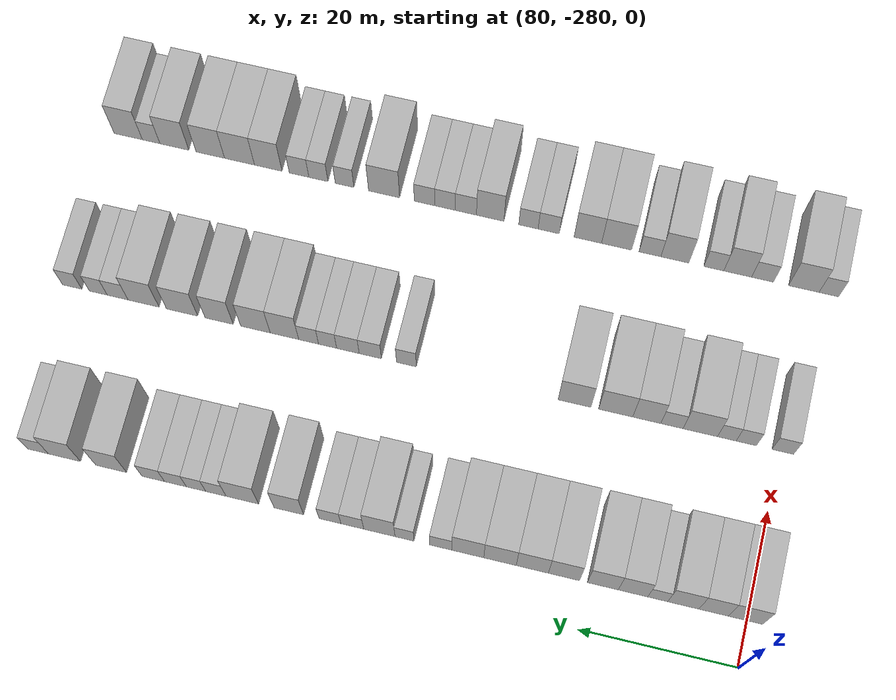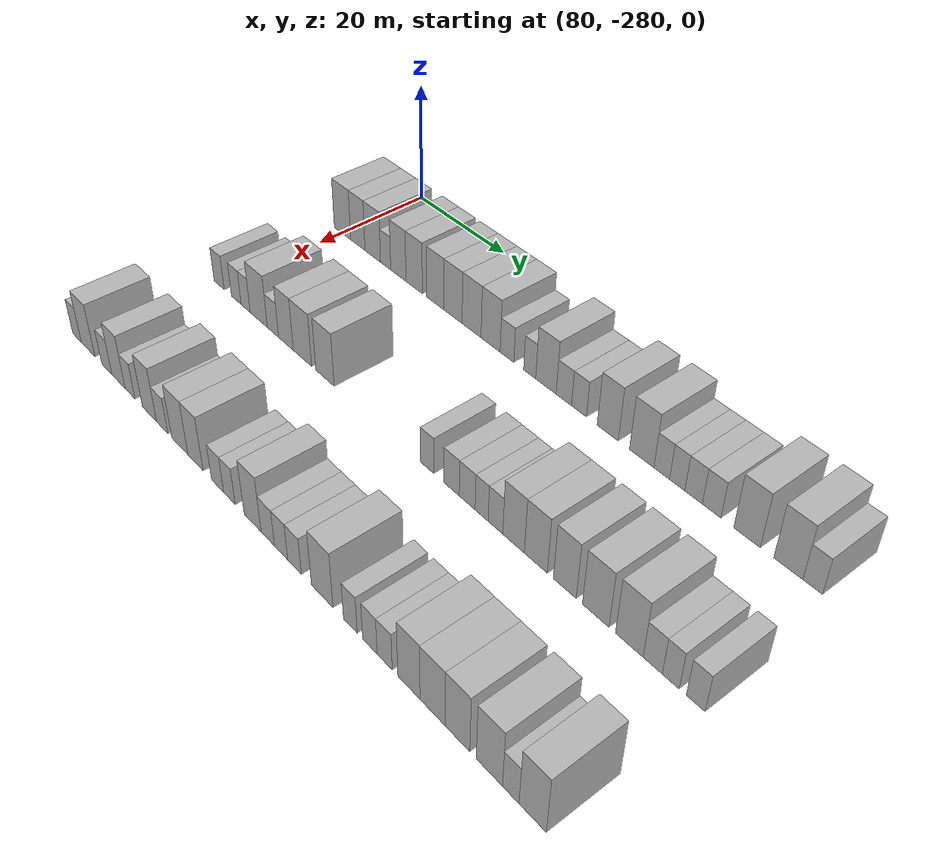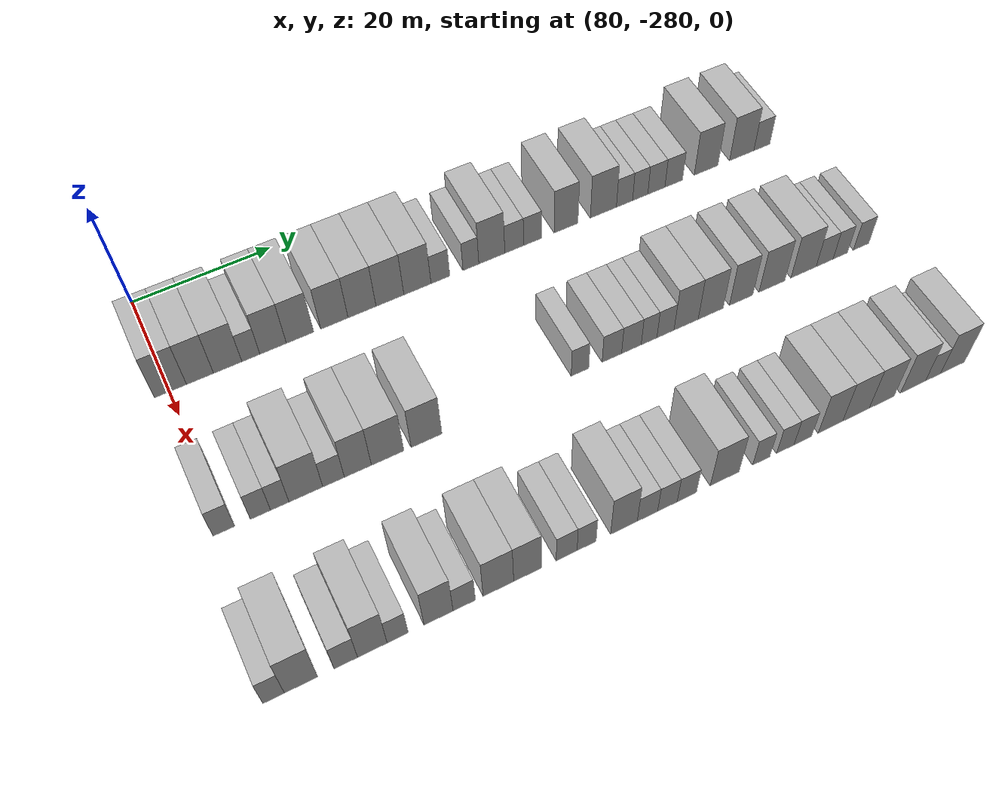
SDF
<sdf version="1.6">
 <world name="default">
  <model name="building_585">
   <static>1</static>
   <pose>91.0000 -279.7850 0 0.000000 0.000000 0.000000</pose>
   <link name="link">
    <pose>0 0 4.50 0 0 0</pose>
    <collision name="collision"><geometry><box><size>10.0000 4.3219 9.0000</size></box></geometry></collision>
    <visual name="visual">
     <cast_shadows>0</cast_shadows>
     <geometry><box><size>10.0000 4.3219 9.0000</size></box></geometry>
     <material>
      <script>
       <uri>model://HANNAS_wall/materials/scripts</uri>
       <uri>model://HANNAS_wall/materials/textures</uri>
       <name>vrc/HANNAS_wall</name>
      </script>
     </material>
    </visual>
   </link>
  </model>
  <model name="building_586">
   <static>1</static>
   <pose>91.0000 -275.7792 0 0.000000 0.000000 0.000000</pose>
   <link name="link">
    <pose>0 0 4.50 0 0 0</pose>
    <collision name="collision"><geometry><box><size>10.0000 3.6896 9.0000</size></box></geometry></collision>
    <visual name="visual">
     <cast_shadows>0</cast_shadows>
     <geometry><box><size>10.0000 3.6896 9.0000</size></box></geometry>
     <material>
      <script>
       <uri>model://HANNAS_wall/materials/scripts</uri>
       <uri>model://HANNAS_wall/materials/textures</uri>
       <name>vrc/HANNAS_wall</name>
      </script>
     </material>
    </visual>
   </link>
  </model>
  <model name="building_587">
   <static>1</static>
   <pose>91.0000 -271.9785 0 0.000000 0.000000 0.000000</pose>
   <link name="link">
    <pose>0 0 4.50 0 0 0</pose>
    <collision name="collision"><geometry><box><size>10.0000 3.9117 9.0000</size></box></geometry></collision>
    <visual name="visual">
     <cast_shadows>0</cast_shadows>
     <geometry><box><size>10.0000 3.9117 9.0000</size></box></geometry>
     <material>
      <script>
       <uri>model://HANNAS_wall/materials/scripts</uri>
       <uri>model://HANNAS_wall/materials/textures</uri>
       <name>vrc/HANNAS_wall</name>
      </script>
     </material>
    </visual>
   </link>
  </model>
  <model name="building_588">
   <static>1</static>
   <pose>91.0000 -268.7636 0 0.000000 0.000000 0.000000</pose>
   <link name="link">
    <pose>0 0 3.00 0 0 0</pose>
    <collision name="collision"><geometry><box><size>10.0000 2.5182 6.0000</size></box></geometry></collision>
    <visual name="visual">
     <cast_shadows>0</cast_shadows>
     <geometry><box><size>10.0000 2.5182 6.0000</size></box></geometry>
     <material>
      <script>
       <uri>model://HANNAS_wall/materials/scripts</uri>
       <uri>model://HANNAS_wall/materials/textures</uri>
       <name>vrc/HANNAS_wall</name>
      </script>
     </material>
    </visual>
   </link>
  </model>
  <model name="building_589">
   <static>1</static>
   <pose>91.0000 -265.6438 0 0.000000 0.000000 0.000000</pose>
   <link name="link">
    <pose>0 0 4.50 0 0 0</pose>
    <collision name="collision"><geometry><box><size>10.0000 3.7214 9.0000</size></box></geometry></collision>
    <visual name="visual">
     <cast_shadows>0</cast_shadows>
     <geometry><box><size>10.0000 3.7214 9.0000</size></box></geometry>
     <material>
      <script>
       <uri>model://HANNAS_wall/materials/scripts</uri>
       <uri>model://HANNAS_wall/materials/textures</uri>
       <name>vrc/HANNAS_wall</name>
      </script>
     </material>
    </visual>
   </link>
  </model>
  <model name="building_590">
   <static>1</static>
   <pose>91.0000 -261.8318 0 0.000000 0.000000 0.000000</pose>
   <link name="link">
    <pose>0 0 4.50 0 0 0</pose>
    <collision name="collision"><geometry><box><size>10.0000 3.9025 9.0000</size></box></geometry></collision>
    <visual name="visual">
     <cast_shadows>0</cast_shadows>
     <geometry><box><size>10.0000 3.9025 9.0000</size></box></geometry>
     <material>
      <script>
       <uri>model://HANNAS_wall/materials/scripts</uri>
       <uri>model://HANNAS_wall/materials/textures</uri>
       <name>vrc/HANNAS_wall</name>
      </script>
     </material>
    </visual>
   </link>
  </model>
  <model name="building_591">
   <static>1</static>
   <pose>91.0000 -256.9039 0 0.000000 0.000000 0.000000</pose>
   <link name="link">
    <pose>0 0 4.50 0 0 0</pose>
    <collision name="collision"><geometry><box><size>10.0000 3.9534 9.0000</size></box></geometry></collision>
    <visual name="visual">
     <cast_shadows>0</cast_shadows>
     <geometry><box><size>10.0000 3.9534 9.0000</size></box></geometry>
     <material>
      <script>
       <uri>model://HANNAS_wall/materials/scripts</uri>
       <uri>model://HANNAS_wall/materials/textures</uri>
       <name>vrc/HANNAS_wall</name>
      </script>
     </material>
    </visual>
   </link>
  </model>
  <model name="building_592">
   <static>1</static>
   <pose>91.0000 -252.8846 0 0.000000 0.000000 0.000000</pose>
   <link name="link">
    <pose>0 0 4.50 0 0 0</pose>
    <collision name="collision"><geometry><box><size>10.0000 4.0851 9.0000</size></box></geometry></collision>
    <visual name="visual">
     <cast_shadows>0</cast_shadows>
     <geometry><box><size>10.0000 4.0851 9.0000</size></box></geometry>
     <material>
      <script>
       <uri>model://HANNAS_wall/materials/scripts</uri>
       <uri>model://HANNAS_wall/materials/textures</uri>
       <name>vrc/HANNAS_wall</name>
      </script>
     </material>
    </visual>
   </link>
  </model>
  <model name="building_593">
   <static>1</static>
   <pose>91.0000 -248.7732 0 0.000000 0.000000 0.000000</pose>
   <link name="link">
    <pose>0 0 4.50 0 0 0</pose>
    <collision name="collision"><geometry><box><size>10.0000 4.1376 9.0000</size></box></geometry></collision>
    <visual name="visual">
     <cast_shadows>0</cast_shadows>
     <geometry><box><size>10.0000 4.1376 9.0000</size></box></geometry>
     <material>
      <script>
       <uri>model://HANNAS_wall/materials/scripts</uri>
       <uri>model://HANNAS_wall/materials/textures</uri>
       <name>vrc/HANNAS_wall</name>
      </script>
     </material>
    </visual>
   </link>
  </model>
  <model name="building_594">
   <static>1</static>
   <pose>91.0000 -244.6728 0 0.000000 0.000000 0.000000</pose>
   <link name="link">
    <pose>0 0 4.50 0 0 0</pose>
    <collision name="collision"><geometry><box><size>10.0000 4.0632 9.0000</size></box></geometry></collision>
    <visual name="visual">
     <cast_shadows>0</cast_shadows>
     <geometry><box><size>10.0000 4.0632 9.0000</size></box></geometry>
     <material>
      <script>
       <uri>model://HANNAS_wall/materials/scripts</uri>
       <uri>model://HANNAS_wall/materials/textures</uri>
       <name>vrc/HANNAS_wall</name>
      </script>
     </material>
    </visual>
   </link>
  </model>
  <model name="building_595">
   <static>1</static>
   <pose>91.0000 -241.2149 0 0.000000 0.000000 0.000000</pose>
   <link name="link">
    <pose>0 0 3.00 0 0 0</pose>
    <collision name="collision"><geometry><box><size>10.0000 2.8525 6.0000</size></box></geometry></collision>
    <visual name="visual">
     <cast_shadows>0</cast_shadows>
     <geometry><box><size>10.0000 2.8525 6.0000</size></box></geometry>
     <material>
      <script>
       <uri>model://HANNAS_wall/materials/scripts</uri>
       <uri>model://HANNAS_wall/materials/textures</uri>
       <name>vrc/HANNAS_wall</name>
      </script>
     </material>
    </visual>
   </link>
  </model>
  <model name="building_596">
   <static>1</static>
   <pose>91.0000 -236.5722 0 0.000000 0.000000 0.000000</pose>
   <link name="link">
    <pose>0 0 3.00 0 0 0</pose>
    <collision name="collision"><geometry><box><size>10.0000 2.4329 6.0000</size></box></geometry></collision>
    <visual name="visual">
     <cast_shadows>0</cast_shadows>
     <geometry><box><size>10.0000 2.4329 6.0000</size></box></geometry>
     <material>
      <script>
       <uri>model://HANNAS_wall/materials/scripts</uri>
       <uri>model://HANNAS_wall/materials/textures</uri>
       <name>vrc/HANNAS_wall</name>
      </script>
     </material>
    </visual>
   </link>
  </model>
  <model name="building_597">
   <static>1</static>
   <pose>91.0000 -233.3431 0 0.000000 0.000000 0.000000</pose>
   <link name="link">
    <pose>0 0 4.50 0 0 0</pose>
    <collision name="collision"><geometry><box><size>10.0000 4.0254 9.0000</size></box></geometry></collision>
    <visual name="visual">
     <cast_shadows>0</cast_shadows>
     <geometry><box><size>10.0000 4.0254 9.0000</size></box></geometry>
     <material>
      <script>
       <uri>model://HANNAS_wall/materials/scripts</uri>
       <uri>model://HANNAS_wall/materials/textures</uri>
       <name>vrc/HANNAS_wall</name>
      </script>
     </material>
    </visual>
   </link>
  </model>
  <model name="building_598">
   <static>1</static>
   <pose>91.0000 -229.8571 0 0.000000 0.000000 0.000000</pose>
   <link name="link">
    <pose>0 0 3.00 0 0 0</pose>
    <collision name="collision"><geometry><box><size>10.0000 2.9467 6.0000</size></box></geometry></collision>
    <visual name="visual">
     <cast_shadows>0</cast_shadows>
     <geometry><box><size>10.0000 2.9467 6.0000</size></box></geometry>
     <material>
      <script>
       <uri>model://HANNAS_wall/materials/scripts</uri>
       <uri>model://HANNAS_wall/materials/textures</uri>
       <name>vrc/HANNAS_wall</name>
      </script>
     </material>
    </visual>
   </link>
  </model>
  <model name="building_599">
   <static>1</static>
   <pose>91.0000 -226.9752 0 0.000000 0.000000 0.000000</pose>
   <link name="link">
    <pose>0 0 3.00 0 0 0</pose>
    <collision name="collision"><geometry><box><size>10.0000 2.8169 6.0000</size></box></geometry></collision>
    <visual name="visual">
     <cast_shadows>0</cast_shadows>
     <geometry><box><size>10.0000 2.8169 6.0000</size></box></geometry>
     <material>
      <script>
       <uri>model://HANNAS_wall/materials/scripts</uri>
       <uri>model://HANNAS_wall/materials/textures</uri>
       <name>vrc/HANNAS_wall</name>
      </script>
     </material>
    </visual>
   </link>
  </model>
  <model name="building_600">
   <static>1</static>
   <pose>91.0000 -221.6546 0 0.000000 0.000000 0.000000</pose>
   <link name="link">
    <pose>0 0 4.50 0 0 0</pose>
    <collision name="collision"><geometry><box><size>10.0000 3.8243 9.0000</size></box></geometry></collision>
    <visual name="visual">
     <cast_shadows>0</cast_shadows>
     <geometry><box><size>10.0000 3.8243 9.0000</size></box></geometry>
     <material>
      <script>
       <uri>model://HANNAS_wall/materials/scripts</uri>
       <uri>model://HANNAS_wall/materials/textures</uri>
       <name>vrc/HANNAS_wall</name>
      </script>
     </material>
    </visual>
   </link>
  </model>
  <model name="building_601">
   <static>1</static>
   <pose>91.0000 -215.6234 0 0.000000 0.000000 0.000000</pose>
   <link name="link">
    <pose>0 0 4.50 0 0 0</pose>
    <collision name="collision"><geometry><box><size>10.0000 4.2382 9.0000</size></box></geometry></collision>
    <visual name="visual">
     <cast_shadows>0</cast_shadows>
     <geometry><box><size>10.0000 4.2382 9.0000</size></box></geometry>
     <material>
      <script>
       <uri>model://HANNAS_wall/materials/scripts</uri>
       <uri>model://HANNAS_wall/materials/textures</uri>
       <name>vrc/HANNAS_wall</name>
      </script>
     </material>
    </visual>
   </link>
  </model>
  <model name="building_602">
   <static>1</static>
   <pose>91.0000 -212.1759 0 0.000000 0.000000 0.000000</pose>
   <link name="link">
    <pose>0 0 3.00 0 0 0</pose>
    <collision name="collision"><geometry><box><size>10.0000 2.6568 6.0000</size></box></geometry></collision>
    <visual name="visual">
     <cast_shadows>0</cast_shadows>
     <geometry><box><size>10.0000 2.6568 6.0000</size></box></geometry>
     <material>
      <script>
       <uri>model://HANNAS_wall/materials/scripts</uri>
       <uri>model://HANNAS_wall/materials/textures</uri>
       <name>vrc/HANNAS_wall</name>
      </script>
     </material>
    </visual>
   </link>
  </model>
  <model name="building_603">
   <static>1</static>
   <pose>91.0000 -209.5853 0 0.000000 0.000000 0.000000</pose>
   <link name="link">
    <pose>0 0 3.00 0 0 0</pose>
    <collision name="collision"><geometry><box><size>10.0000 2.5243 6.0000</size></box></geometry></collision>
    <visual name="visual">
     <cast_shadows>0</cast_shadows>
     <geometry><box><size>10.0000 2.5243 6.0000</size></box></geometry>
     <material>
      <script>
       <uri>model://HANNAS_wall/materials/scripts</uri>
       <uri>model://HANNAS_wall/materials/textures</uri>
       <name>vrc/HANNAS_wall</name>
      </script>
     </material>
    </visual>
   </link>
  </model>
  <model name="building_604">
   <static>1</static>
   <pose>91.0000 -206.8949 0 0.000000 0.000000 0.000000</pose>
   <link name="link">
    <pose>0 0 3.00 0 0 0</pose>
    <collision name="collision"><geometry><box><size>10.0000 2.8566 6.0000</size></box></geometry></collision>
    <visual name="visual">
     <cast_shadows>0</cast_shadows>
     <geometry><box><size>10.0000 2.8566 6.0000</size></box></geometry>
     <material>
      <script>
       <uri>model://HANNAS_wall/materials/scripts</uri>
       <uri>model://HANNAS_wall/materials/textures</uri>
       <name>vrc/HANNAS_wall</name>
      </script>
     </material>
    </visual>
   </link>
  </model>
  <model name="building_605">
   <static>1</static>
   <pose>91.0000 -203.9843 0 0.000000 0.000000 0.000000</pose>
   <link name="link">
    <pose>0 0 3.00 0 0 0</pose>
    <collision name="collision"><geometry><box><size>10.0000 2.9645 6.0000</size></box></geometry></collision>
    <visual name="visual">
     <cast_shadows>0</cast_shadows>
     <geometry><box><size>10.0000 2.9645 6.0000</size></box></geometry>
     <material>
      <script>
       <uri>model://HANNAS_wall/materials/scripts</uri>
       <uri>model://HANNAS_wall/materials/textures</uri>
       <name>vrc/HANNAS_wall</name>
      </script>
     </material>
    </visual>
   </link>
  </model>
  <model name="building_606">
   <static>1</static>
   <pose>91.0000 -198.4713 0 0.000000 0.000000 0.000000</pose>
   <link name="link">
    <pose>0 0 4.50 0 0 0</pose>
    <collision name="collision"><geometry><box><size>10.0000 4.0614 9.0000</size></box></geometry></collision>
    <visual name="visual">
     <cast_shadows>0</cast_shadows>
     <geometry><box><size>10.0000 4.0614 9.0000</size></box></geometry>
     <material>
      <script>
       <uri>model://HANNAS_wall/materials/scripts</uri>
       <uri>model://HANNAS_wall/materials/textures</uri>
       <name>vrc/HANNAS_wall</name>
      </script>
     </material>
    </visual>
   </link>
  </model>
  <model name="building_607">
   <static>1</static>
   <pose>91.0000 -192.3293 0 0.000000 0.000000 0.000000</pose>
   <link name="link">
    <pose>0 0 4.50 0 0 0</pose>
    <collision name="collision"><geometry><box><size>10.0000 4.2226 9.0000</size></box></geometry></collision>
    <visual name="visual">
     <cast_shadows>0</cast_shadows>
     <geometry><box><size>10.0000 4.2226 9.0000</size></box></geometry>
     <material>
      <script>
       <uri>model://HANNAS_wall/materials/scripts</uri>
       <uri>model://HANNAS_wall/materials/textures</uri>
       <name>vrc/HANNAS_wall</name>
      </script>
     </material>
    </visual>
   </link>
  </model>
  <model name="building_608">
   <static>1</static>
   <pose>91.0000 -188.8237 0 0.000000 0.000000 0.000000</pose>
   <link name="link">
    <pose>0 0 3.00 0 0 0</pose>
    <collision name="collision"><geometry><box><size>10.0000 2.7886 6.0000</size></box></geometry></collision>
    <visual name="visual">
     <cast_shadows>0</cast_shadows>
     <geometry><box><size>10.0000 2.7886 6.0000</size></box></geometry>
     <material>
      <script>
       <uri>model://HANNAS_wall/materials/scripts</uri>
       <uri>model://HANNAS_wall/materials/textures</uri>
       <name>vrc/HANNAS_wall</name>
      </script>
     </material>
    </visual>
   </link>
  </model>
  <model name="building_764">
   <static>1</static>
   <pose>113.0000 -280.3824 0 0.000000 0.000000 0.000000</pose>
   <link name="link">
    <pose>0 0 3.00 0 0 0</pose>
    <collision name="collision"><geometry><box><size>10.0000 2.7783 6.0000</size></box></geometry></collision>
    <visual name="visual">
     <cast_shadows>0</cast_shadows>
     <geometry><box><size>10.0000 2.7783 6.0000</size></box></geometry>
     <material>
      <script>
       <uri>model://HANNAS_wall/materials/scripts</uri>
       <uri>model://HANNAS_wall/materials/textures</uri>
       <name>vrc/HANNAS_wall</name>
      </script>
     </material>
    </visual>
   </link>
  </model>
  <model name="building_765">
   <static>1</static>
   <pose>113.0000 -275.6831 0 0.000000 0.000000 0.000000</pose>
   <link name="link">
    <pose>0 0 3.00 0 0 0</pose>
    <collision name="collision"><geometry><box><size>10.0000 2.6202 6.0000</size></box></geometry></collision>
    <visual name="visual">
     <cast_shadows>0</cast_shadows>
     <geometry><box><size>10.0000 2.6202 6.0000</size></box></geometry>
     <material>
      <script>
       <uri>model://HANNAS_wall/materials/scripts</uri>
       <uri>model://HANNAS_wall/materials/textures</uri>
       <name>vrc/HANNAS_wall</name>
      </script>
     </material>
    </visual>
   </link>
  </model>
  <model name="building_766">
   <static>1</static>
   <pose>113.0000 -273.1709 0 0.000000 0.000000 0.000000</pose>
   <link name="link">
    <pose>0 0 3.00 0 0 0</pose>
    <collision name="collision"><geometry><box><size>10.0000 2.4044 6.0000</size></box></geometry></collision>
    <visual name="visual">
     <cast_shadows>0</cast_shadows>
     <geometry><box><size>10.0000 2.4044 6.0000</size></box></geometry>
     <material>
      <script>
       <uri>model://HANNAS_wall/materials/scripts</uri>
       <uri>model://HANNAS_wall/materials/textures</uri>
       <name>vrc/HANNAS_wall</name>
      </script>
     </material>
    </visual>
   </link>
  </model>
  <model name="building_767">
   <static>1</static>
   <pose>113.0000 -269.7407 0 0.000000 0.000000 0.000000</pose>
   <link name="link">
    <pose>0 0 4.50 0 0 0</pose>
    <collision name="collision"><geometry><box><size>10.0000 4.4560 9.0000</size></box></geometry></collision>
    <visual name="visual">
     <cast_shadows>0</cast_shadows>
     <geometry><box><size>10.0000 4.4560 9.0000</size></box></geometry>
     <material>
      <script>
       <uri>model://HANNAS_wall/materials/scripts</uri>
       <uri>model://HANNAS_wall/materials/textures</uri>
       <name>vrc/HANNAS_wall</name>
      </script>
     </material>
    </visual>
   </link>
  </model>
  <model name="building_768">
   <static>1</static>
   <pose>113.0000 -266.0781 0 0.000000 0.000000 0.000000</pose>
   <link name="link">
    <pose>0 0 3.00 0 0 0</pose>
    <collision name="collision"><geometry><box><size>10.0000 2.8690 6.0000</size></box></geometry></collision>
    <visual name="visual">
     <cast_shadows>0</cast_shadows>
     <geometry><box><size>10.0000 2.8690 6.0000</size></box></geometry>
     <material>
      <script>
       <uri>model://HANNAS_wall/materials/scripts</uri>
       <uri>model://HANNAS_wall/materials/textures</uri>
       <name>vrc/HANNAS_wall</name>
      </script>
     </material>
    </visual>
   </link>
  </model>
  <model name="building_769">
   <static>1</static>
   <pose>113.0000 -262.8175 0 0.000000 0.000000 0.000000</pose>
   <link name="link">
    <pose>0 0 4.50 0 0 0</pose>
    <collision name="collision"><geometry><box><size>10.0000 3.6521 9.0000</size></box></geometry></collision>
    <visual name="visual">
     <cast_shadows>0</cast_shadows>
     <geometry><box><size>10.0000 3.6521 9.0000</size></box></geometry>
     <material>
      <script>
       <uri>model://HANNAS_wall/materials/scripts</uri>
       <uri>model://HANNAS_wall/materials/textures</uri>
       <name>vrc/HANNAS_wall</name>
      </script>
     </material>
    </visual>
   </link>
  </model>
  <model name="building_770">
   <static>1</static>
   <pose>113.0000 -258.7748 0 0.000000 0.000000 0.000000</pose>
   <link name="link">
    <pose>0 0 4.50 0 0 0</pose>
    <collision name="collision"><geometry><box><size>10.0000 4.4333 9.0000</size></box></geometry></collision>
    <visual name="visual">
     <cast_shadows>0</cast_shadows>
     <geometry><box><size>10.0000 4.4333 9.0000</size></box></geometry>
     <material>
      <script>
       <uri>model://HANNAS_wall/materials/scripts</uri>
       <uri>model://HANNAS_wall/materials/textures</uri>
       <name>vrc/HANNAS_wall</name>
      </script>
     </material>
    </visual>
   </link>
  </model>
  <model name="building_771">
   <static>1</static>
   <pose>113.0000 -253.4201 0 0.000000 0.000000 0.000000</pose>
   <link name="link">
    <pose>0 0 4.50 0 0 0</pose>
    <collision name="collision"><geometry><box><size>10.0000 4.2761 9.0000</size></box></geometry></collision>
    <visual name="visual">
     <cast_shadows>0</cast_shadows>
     <geometry><box><size>10.0000 4.2761 9.0000</size></box></geometry>
     <material>
      <script>
       <uri>model://HANNAS_wall/materials/scripts</uri>
       <uri>model://HANNAS_wall/materials/textures</uri>
       <name>vrc/HANNAS_wall</name>
      </script>
     </material>
    </visual>
   </link>
  </model>
  <model name="building_772">
   <static>1</static>
   <pose>113.0000 -231.3589 0 0.000000 0.000000 0.000000</pose>
   <link name="link">
    <pose>0 0 3.00 0 0 0</pose>
    <collision name="collision"><geometry><box><size>10.0000 2.6154 6.0000</size></box></geometry></collision>
    <visual name="visual">
     <cast_shadows>0</cast_shadows>
     <geometry><box><size>10.0000 2.6154 6.0000</size></box></geometry>
     <material>
      <script>
       <uri>model://HANNAS_wall/materials/scripts</uri>
       <uri>model://HANNAS_wall/materials/textures</uri>
       <name>vrc/HANNAS_wall</name>
      </script>
     </material>
    </visual>
   </link>
  </model>
  <model name="building_773">
   <static>1</static>
   <pose>113.0000 -226.5814 0 0.000000 0.000000 0.000000</pose>
   <link name="link">
    <pose>0 0 3.00 0 0 0</pose>
    <collision name="collision"><geometry><box><size>10.0000 2.9395 6.0000</size></box></geometry></collision>
    <visual name="visual">
     <cast_shadows>0</cast_shadows>
     <geometry><box><size>10.0000 2.9395 6.0000</size></box></geometry>
     <material>
      <script>
       <uri>model://HANNAS_wall/materials/scripts</uri>
       <uri>model://HANNAS_wall/materials/textures</uri>
       <name>vrc/HANNAS_wall</name>
      </script>
     </material>
    </visual>
   </link>
  </model>
  <model name="building_774">
   <static>1</static>
   <pose>113.0000 -223.6183 0 0.000000 0.000000 0.000000</pose>
   <link name="link">
    <pose>0 0 3.00 0 0 0</pose>
    <collision name="collision"><geometry><box><size>10.0000 2.9867 6.0000</size></box></geometry></collision>
    <visual name="visual">
     <cast_shadows>0</cast_shadows>
     <geometry><box><size>10.0000 2.9867 6.0000</size></box></geometry>
     <material>
      <script>
       <uri>model://HANNAS_wall/materials/scripts</uri>
       <uri>model://HANNAS_wall/materials/textures</uri>
       <name>vrc/HANNAS_wall</name>
      </script>
     </material>
    </visual>
   </link>
  </model>
  <model name="building_775">
   <static>1</static>
   <pose>113.0000 -220.9202 0 0.000000 0.000000 0.000000</pose>
   <link name="link">
    <pose>0 0 3.00 0 0 0</pose>
    <collision name="collision"><geometry><box><size>10.0000 2.4095 6.0000</size></box></geometry></collision>
    <visual name="visual">
     <cast_shadows>0</cast_shadows>
     <geometry><box><size>10.0000 2.4095 6.0000</size></box></geometry>
     <material>
      <script>
       <uri>model://HANNAS_wall/materials/scripts</uri>
       <uri>model://HANNAS_wall/materials/textures</uri>
       <name>vrc/HANNAS_wall</name>
      </script>
     </material>
    </visual>
   </link>
  </model>
  <model name="building_776">
   <static>1</static>
   <pose>113.0000 -218.3922 0 0.000000 0.000000 0.000000</pose>
   <link name="link">
    <pose>0 0 3.00 0 0 0</pose>
    <collision name="collision"><geometry><box><size>10.0000 2.6464 6.0000</size></box></geometry></collision>
    <visual name="visual">
     <cast_shadows>0</cast_shadows>
     <geometry><box><size>10.0000 2.6464 6.0000</size></box></geometry>
     <material>
      <script>
       <uri>model://HANNAS_wall/materials/scripts</uri>
       <uri>model://HANNAS_wall/materials/textures</uri>
       <name>vrc/HANNAS_wall</name>
      </script>
     </material>
    </visual>
   </link>
  </model>
  <model name="building_777">
   <static>1</static>
   <pose>113.0000 -215.1685 0 0.000000 0.000000 0.000000</pose>
   <link name="link">
    <pose>0 0 4.50 0 0 0</pose>
    <collision name="collision"><geometry><box><size>10.0000 3.8011 9.0000</size></box></geometry></collision>
    <visual name="visual">
     <cast_shadows>0</cast_shadows>
     <geometry><box><size>10.0000 3.8011 9.0000</size></box></geometry>
     <material>
      <script>
       <uri>model://HANNAS_wall/materials/scripts</uri>
       <uri>model://HANNAS_wall/materials/textures</uri>
       <name>vrc/HANNAS_wall</name>
      </script>
     </material>
    </visual>
   </link>
  </model>
  <model name="building_778">
   <static>1</static>
   <pose>113.0000 -211.2959 0 0.000000 0.000000 0.000000</pose>
   <link name="link">
    <pose>0 0 4.50 0 0 0</pose>
    <collision name="collision"><geometry><box><size>10.0000 3.9441 9.0000</size></box></geometry></collision>
    <visual name="visual">
     <cast_shadows>0</cast_shadows>
     <geometry><box><size>10.0000 3.9441 9.0000</size></box></geometry>
     <material>
      <script>
       <uri>model://HANNAS_wall/materials/scripts</uri>
       <uri>model://HANNAS_wall/materials/textures</uri>
       <name>vrc/HANNAS_wall</name>
      </script>
     </material>
    </visual>
   </link>
  </model>
  <model name="building_779">
   <static>1</static>
   <pose>113.0000 -206.4420 0 0.000000 0.000000 0.000000</pose>
   <link name="link">
    <pose>0 0 4.50 0 0 0</pose>
    <collision name="collision"><geometry><box><size>10.0000 3.7635 9.0000</size></box></geometry></collision>
    <visual name="visual">
     <cast_shadows>0</cast_shadows>
     <geometry><box><size>10.0000 3.7635 9.0000</size></box></geometry>
     <material>
      <script>
       <uri>model://HANNAS_wall/materials/scripts</uri>
       <uri>model://HANNAS_wall/materials/textures</uri>
       <name>vrc/HANNAS_wall</name>
      </script>
     </material>
    </visual>
   </link>
  </model>
  <model name="building_780">
   <static>1</static>
   <pose>113.0000 -201.4583 0 0.000000 0.000000 0.000000</pose>
   <link name="link">
    <pose>0 0 4.50 0 0 0</pose>
    <collision name="collision"><geometry><box><size>10.0000 4.2040 9.0000</size></box></geometry></collision>
    <visual name="visual">
     <cast_shadows>0</cast_shadows>
     <geometry><box><size>10.0000 4.2040 9.0000</size></box></geometry>
     <material>
      <script>
       <uri>model://HANNAS_wall/materials/scripts</uri>
       <uri>model://HANNAS_wall/materials/textures</uri>
       <name>vrc/HANNAS_wall</name>
      </script>
     </material>
    </visual>
   </link>
  </model>
  <model name="building_781">
   <static>1</static>
   <pose>113.0000 -196.2708 0 0.000000 0.000000 0.000000</pose>
   <link name="link">
    <pose>0 0 4.50 0 0 0</pose>
    <collision name="collision"><geometry><box><size>10.0000 4.1709 9.0000</size></box></geometry></collision>
    <visual name="visual">
     <cast_shadows>0</cast_shadows>
     <geometry><box><size>10.0000 4.1709 9.0000</size></box></geometry>
     <material>
      <script>
       <uri>model://HANNAS_wall/materials/scripts</uri>
       <uri>model://HANNAS_wall/materials/textures</uri>
       <name>vrc/HANNAS_wall</name>
      </script>
     </material>
    </visual>
   </link>
  </model>
  <model name="building_782">
   <static>1</static>
   <pose>113.0000 -192.7764 0 0.000000 0.000000 0.000000</pose>
   <link name="link">
    <pose>0 0 3.00 0 0 0</pose>
    <collision name="collision"><geometry><box><size>10.0000 2.8179 6.0000</size></box></geometry></collision>
    <visual name="visual">
     <cast_shadows>0</cast_shadows>
     <geometry><box><size>10.0000 2.8179 6.0000</size></box></geometry>
     <material>
      <script>
       <uri>model://HANNAS_wall/materials/scripts</uri>
       <uri>model://HANNAS_wall/materials/textures</uri>
       <name>vrc/HANNAS_wall</name>
      </script>
     </material>
    </visual>
   </link>
  </model>
  <model name="building_783">
   <static>1</static>
   <pose>113.0000 -190.1520 0 0.000000 0.000000 0.000000</pose>
   <link name="link">
    <pose>0 0 3.00 0 0 0</pose>
    <collision name="collision"><geometry><box><size>10.0000 2.4309 6.0000</size></box></geometry></collision>
    <visual name="visual">
     <cast_shadows>0</cast_shadows>
     <geometry><box><size>10.0000 2.4309 6.0000</size></box></geometry>
     <material>
      <script>
       <uri>model://HANNAS_wall/materials/scripts</uri>
       <uri>model://HANNAS_wall/materials/textures</uri>
       <name>vrc/HANNAS_wall</name>
      </script>
     </material>
    </visual>
   </link>
  </model>
  <model name="building_784">
   <static>1</static>
   <pose>113.0000 -186.6276 0 0.000000 0.000000 0.000000</pose>
   <link name="link">
    <pose>0 0 3.00 0 0 0</pose>
    <collision name="collision"><geometry><box><size>10.0000 2.6179 6.0000</size></box></geometry></collision>
    <visual name="visual">
     <cast_shadows>0</cast_shadows>
     <geometry><box><size>10.0000 2.6179 6.0000</size></box></geometry>
     <material>
      <script>
       <uri>model://HANNAS_wall/materials/scripts</uri>
       <uri>model://HANNAS_wall/materials/textures</uri>
       <name>vrc/HANNAS_wall</name>
      </script>
     </material>
    </visual>
   </link>
  </model>
  <model name="building_948">
   <static>1</static>
   <pose>135.0000 -282.3817 0 0.000000 0.000000 0.000000</pose>
   <link name="link">
    <pose>0 0 3.00 0 0 0</pose>
    <collision name="collision"><geometry><box><size>10.0000 2.5649 6.0000</size></box></geometry></collision>
    <visual name="visual">
     <cast_shadows>0</cast_shadows>
     <geometry><box><size>10.0000 2.5649 6.0000</size></box></geometry>
     <material>
      <script>
       <uri>model://HANNAS_wall/materials/scripts</uri>
       <uri>model://HANNAS_wall/materials/textures</uri>
       <name>vrc/HANNAS_wall</name>
      </script>
     </material>
    </visual>
   </link>
  </model>
  <model name="building_949">
   <static>1</static>
   <pose>135.0000 -279.0891 0 0.000000 0.000000 0.000000</pose>
   <link name="link">
    <pose>0 0 4.50 0 0 0</pose>
    <collision name="collision"><geometry><box><size>10.0000 4.0204 9.0000</size></box></geometry></collision>
    <visual name="visual">
     <cast_shadows>0</cast_shadows>
     <geometry><box><size>10.0000 4.0204 9.0000</size></box></geometry>
     <material>
      <script>
       <uri>model://HANNAS_wall/materials/scripts</uri>
       <uri>model://HANNAS_wall/materials/textures</uri>
       <name>vrc/HANNAS_wall</name>
      </script>
     </material>
    </visual>
   </link>
  </model>
  <model name="building_950">
   <static>1</static>
   <pose>135.0000 -273.6322 0 0.000000 0.000000 0.000000</pose>
   <link name="link">
    <pose>0 0 3.00 0 0 0</pose>
    <collision name="collision"><geometry><box><size>10.0000 2.8932 6.0000</size></box></geometry></collision>
    <visual name="visual">
     <cast_shadows>0</cast_shadows>
     <geometry><box><size>10.0000 2.8932 6.0000</size></box></geometry>
     <material>
      <script>
       <uri>model://HANNAS_wall/materials/scripts</uri>
       <uri>model://HANNAS_wall/materials/textures</uri>
       <name>vrc/HANNAS_wall</name>
      </script>
     </material>
    </visual>
   </link>
  </model>
  <model name="building_951">
   <static>1</static>
   <pose>135.0000 -270.3445 0 0.000000 0.000000 0.000000</pose>
   <link name="link">
    <pose>0 0 4.50 0 0 0</pose>
    <collision name="collision"><geometry><box><size>10.0000 3.6822 9.0000</size></box></geometry></collision>
    <visual name="visual">
     <cast_shadows>0</cast_shadows>
     <geometry><box><size>10.0000 3.6822 9.0000</size></box></geometry>
     <material>
      <script>
       <uri>model://HANNAS_wall/materials/scripts</uri>
       <uri>model://HANNAS_wall/materials/textures</uri>
       <name>vrc/HANNAS_wall</name>
      </script>
     </material>
    </visual>
   </link>
  </model>
  <model name="building_952">
   <static>1</static>
   <pose>135.0000 -267.1789 0 0.000000 0.000000 0.000000</pose>
   <link name="link">
    <pose>0 0 3.00 0 0 0</pose>
    <collision name="collision"><geometry><box><size>10.0000 2.6490 6.0000</size></box></geometry></collision>
    <visual name="visual">
     <cast_shadows>0</cast_shadows>
     <geometry><box><size>10.0000 2.6490 6.0000</size></box></geometry>
     <material>
      <script>
       <uri>model://HANNAS_wall/materials/scripts</uri>
       <uri>model://HANNAS_wall/materials/textures</uri>
       <name>vrc/HANNAS_wall</name>
      </script>
     </material>
    </visual>
   </link>
  </model>
  <model name="building_953">
   <static>1</static>
   <pose>135.0000 -261.9906 0 0.000000 0.000000 0.000000</pose>
   <link name="link">
    <pose>0 0 4.50 0 0 0</pose>
    <collision name="collision"><geometry><box><size>10.0000 3.7277 9.0000</size></box></geometry></collision>
    <visual name="visual">
     <cast_shadows>0</cast_shadows>
     <geometry><box><size>10.0000 3.7277 9.0000</size></box></geometry>
     <material>
      <script>
       <uri>model://HANNAS_wall/materials/scripts</uri>
       <uri>model://HANNAS_wall/materials/textures</uri>
       <name>vrc/HANNAS_wall</name>
      </script>
     </material>
    </visual>
   </link>
  </model>
  <model name="building_954">
   <static>1</static>
   <pose>135.0000 -258.6788 0 0.000000 0.000000 0.000000</pose>
   <link name="link">
    <pose>0 0 3.00 0 0 0</pose>
    <collision name="collision"><geometry><box><size>10.0000 2.8959 6.0000</size></box></geometry></collision>
    <visual name="visual">
     <cast_shadows>0</cast_shadows>
     <geometry><box><size>10.0000 2.8959 6.0000</size></box></geometry>
     <material>
      <script>
       <uri>model://HANNAS_wall/materials/scripts</uri>
       <uri>model://HANNAS_wall/materials/textures</uri>
       <name>vrc/HANNAS_wall</name>
      </script>
     </material>
    </visual>
   </link>
  </model>
  <model name="building_955">
   <static>1</static>
   <pose>135.0000 -254.2227 0 0.000000 0.000000 0.000000</pose>
   <link name="link">
    <pose>0 0 4.50 0 0 0</pose>
    <collision name="collision"><geometry><box><size>10.0000 4.0163 9.0000</size></box></geometry></collision>
    <visual name="visual">
     <cast_shadows>0</cast_shadows>
     <geometry><box><size>10.0000 4.0163 9.0000</size></box></geometry>
     <material>
      <script>
       <uri>model://HANNAS_wall/materials/scripts</uri>
       <uri>model://HANNAS_wall/materials/textures</uri>
       <name>vrc/HANNAS_wall</name>
      </script>
     </material>
    </visual>
   </link>
  </model>
  <model name="building_956">
   <static>1</static>
   <pose>135.0000 -250.3766 0 0.000000 0.000000 0.000000</pose>
   <link name="link">
    <pose>0 0 4.50 0 0 0</pose>
    <collision name="collision"><geometry><box><size>10.0000 3.6758 9.0000</size></box></geometry></collision>
    <visual name="visual">
     <cast_shadows>0</cast_shadows>
     <geometry><box><size>10.0000 3.6758 9.0000</size></box></geometry>
     <material>
      <script>
       <uri>model://HANNAS_wall/materials/scripts</uri>
       <uri>model://HANNAS_wall/materials/textures</uri>
       <name>vrc/HANNAS_wall</name>
      </script>
     </material>
    </visual>
   </link>
  </model>
  <model name="building_957">
   <static>1</static>
   <pose>135.0000 -245.1214 0 0.000000 0.000000 0.000000</pose>
   <link name="link">
    <pose>0 0 3.00 0 0 0</pose>
    <collision name="collision"><geometry><box><size>10.0000 2.8347 6.0000</size></box></geometry></collision>
    <visual name="visual">
     <cast_shadows>0</cast_shadows>
     <geometry><box><size>10.0000 2.8347 6.0000</size></box></geometry>
     <material>
      <script>
       <uri>model://HANNAS_wall/materials/scripts</uri>
       <uri>model://HANNAS_wall/materials/textures</uri>
       <name>vrc/HANNAS_wall</name>
      </script>
     </material>
    </visual>
   </link>
  </model>
  <model name="building_958">
   <static>1</static>
   <pose>135.0000 -242.4000 0 0.000000 0.000000 0.000000</pose>
   <link name="link">
    <pose>0 0 3.00 0 0 0</pose>
    <collision name="collision"><geometry><box><size>10.0000 2.6081 6.0000</size></box></geometry></collision>
    <visual name="visual">
     <cast_shadows>0</cast_shadows>
     <geometry><box><size>10.0000 2.6081 6.0000</size></box></geometry>
     <material>
      <script>
       <uri>model://HANNAS_wall/materials/scripts</uri>
       <uri>model://HANNAS_wall/materials/textures</uri>
       <name>vrc/HANNAS_wall</name>
      </script>
     </material>
    </visual>
   </link>
  </model>
  <model name="building_959">
   <static>1</static>
   <pose>135.0000 -237.2396 0 0.000000 0.000000 0.000000</pose>
   <link name="link">
    <pose>0 0 4.50 0 0 0</pose>
    <collision name="collision"><geometry><box><size>10.0000 3.7126 9.0000</size></box></geometry></collision>
    <visual name="visual">
     <cast_shadows>0</cast_shadows>
     <geometry><box><size>10.0000 3.7126 9.0000</size></box></geometry>
     <material>
      <script>
       <uri>model://HANNAS_wall/materials/scripts</uri>
       <uri>model://HANNAS_wall/materials/textures</uri>
       <name>vrc/HANNAS_wall</name>
      </script>
     </material>
    </visual>
   </link>
  </model>
  <model name="building_960">
   <static>1</static>
   <pose>135.0000 -233.9515 0 0.000000 0.000000 0.000000</pose>
   <link name="link">
    <pose>0 0 3.00 0 0 0</pose>
    <collision name="collision"><geometry><box><size>10.0000 2.8636 6.0000</size></box></geometry></collision>
    <visual name="visual">
     <cast_shadows>0</cast_shadows>
     <geometry><box><size>10.0000 2.8636 6.0000</size></box></geometry>
     <material>
      <script>
       <uri>model://HANNAS_wall/materials/scripts</uri>
       <uri>model://HANNAS_wall/materials/textures</uri>
       <name>vrc/HANNAS_wall</name>
      </script>
     </material>
    </visual>
   </link>
  </model>
  <model name="building_961">
   <static>1</static>
   <pose>135.0000 -231.1369 0 0.000000 0.000000 0.000000</pose>
   <link name="link">
    <pose>0 0 3.00 0 0 0</pose>
    <collision name="collision"><geometry><box><size>10.0000 2.7656 6.0000</size></box></geometry></collision>
    <visual name="visual">
     <cast_shadows>0</cast_shadows>
     <geometry><box><size>10.0000 2.7656 6.0000</size></box></geometry>
     <material>
      <script>
       <uri>model://HANNAS_wall/materials/scripts</uri>
       <uri>model://HANNAS_wall/materials/textures</uri>
       <name>vrc/HANNAS_wall</name>
      </script>
     </material>
    </visual>
   </link>
  </model>
  <model name="building_962">
   <static>1</static>
   <pose>135.0000 -228.3644 0 0.000000 0.000000 0.000000</pose>
   <link name="link">
    <pose>0 0 3.00 0 0 0</pose>
    <collision name="collision"><geometry><box><size>10.0000 2.7793 6.0000</size></box></geometry></collision>
    <visual name="visual">
     <cast_shadows>0</cast_shadows>
     <geometry><box><size>10.0000 2.7793 6.0000</size></box></geometry>
     <material>
      <script>
       <uri>model://HANNAS_wall/materials/scripts</uri>
       <uri>model://HANNAS_wall/materials/textures</uri>
       <name>vrc/HANNAS_wall</name>
      </script>
     </material>
    </visual>
   </link>
  </model>
  <model name="building_963">
   <static>1</static>
   <pose>135.0000 -222.8676 0 0.000000 0.000000 0.000000</pose>
   <link name="link">
    <pose>0 0 4.50 0 0 0</pose>
    <collision name="collision"><geometry><box><size>10.0000 4.2145 9.0000</size></box></geometry></collision>
    <visual name="visual">
     <cast_shadows>0</cast_shadows>
     <geometry><box><size>10.0000 4.2145 9.0000</size></box></geometry>
     <material>
      <script>
       <uri>model://HANNAS_wall/materials/scripts</uri>
       <uri>model://HANNAS_wall/materials/textures</uri>
       <name>vrc/HANNAS_wall</name>
      </script>
     </material>
    </visual>
   </link>
  </model>
  <model name="building_964">
   <static>1</static>
   <pose>135.0000 -217.4870 0 0.000000 0.000000 0.000000</pose>
   <link name="link">
    <pose>0 0 3.00 0 0 0</pose>
    <collision name="collision"><geometry><box><size>10.0000 2.5466 6.0000</size></box></geometry></collision>
    <visual name="visual">
     <cast_shadows>0</cast_shadows>
     <geometry><box><size>10.0000 2.5466 6.0000</size></box></geometry>
     <material>
      <script>
       <uri>model://HANNAS_wall/materials/scripts</uri>
       <uri>model://HANNAS_wall/materials/textures</uri>
       <name>vrc/HANNAS_wall</name>
      </script>
     </material>
    </visual>
   </link>
  </model>
  <model name="building_965">
   <static>1</static>
   <pose>135.0000 -213.9049 0 0.000000 0.000000 0.000000</pose>
   <link name="link">
    <pose>0 0 3.00 0 0 0</pose>
    <collision name="collision"><geometry><box><size>10.0000 2.6176 6.0000</size></box></geometry></collision>
    <visual name="visual">
     <cast_shadows>0</cast_shadows>
     <geometry><box><size>10.0000 2.6176 6.0000</size></box></geometry>
     <material>
      <script>
       <uri>model://HANNAS_wall/materials/scripts</uri>
       <uri>model://HANNAS_wall/materials/textures</uri>
       <name>vrc/HANNAS_wall</name>
      </script>
     </material>
    </visual>
   </link>
  </model>
  <model name="building_966">
   <static>1</static>
   <pose>135.0000 -211.2600 0 0.000000 0.000000 0.000000</pose>
   <link name="link">
    <pose>0 0 3.00 0 0 0</pose>
    <collision name="collision"><geometry><box><size>10.0000 2.6723 6.0000</size></box></geometry></collision>
    <visual name="visual">
     <cast_shadows>0</cast_shadows>
     <geometry><box><size>10.0000 2.6723 6.0000</size></box></geometry>
     <material>
      <script>
       <uri>model://HANNAS_wall/materials/scripts</uri>
       <uri>model://HANNAS_wall/materials/textures</uri>
       <name>vrc/HANNAS_wall</name>
      </script>
     </material>
    </visual>
   </link>
  </model>
  <model name="building_967">
   <static>1</static>
   <pose>135.0000 -207.0342 0 0.000000 0.000000 0.000000</pose>
   <link name="link">
    <pose>0 0 4.50 0 0 0</pose>
    <collision name="collision"><geometry><box><size>10.0000 3.7794 9.0000</size></box></geometry></collision>
    <visual name="visual">
     <cast_shadows>0</cast_shadows>
     <geometry><box><size>10.0000 3.7794 9.0000</size></box></geometry>
     <material>
      <script>
       <uri>model://HANNAS_wall/materials/scripts</uri>
       <uri>model://HANNAS_wall/materials/textures</uri>
       <name>vrc/HANNAS_wall</name>
      </script>
     </material>
    </visual>
   </link>
  </model>
  <model name="building_968">
   <static>1</static>
   <pose>135.0000 -203.0858 0 0.000000 0.000000 0.000000</pose>
   <link name="link">
    <pose>0 0 4.50 0 0 0</pose>
    <collision name="collision"><geometry><box><size>10.0000 4.1175 9.0000</size></box></geometry></collision>
    <visual name="visual">
     <cast_shadows>0</cast_shadows>
     <geometry><box><size>10.0000 4.1175 9.0000</size></box></geometry>
     <material>
      <script>
       <uri>model://HANNAS_wall/materials/scripts</uri>
       <uri>model://HANNAS_wall/materials/textures</uri>
       <name>vrc/HANNAS_wall</name>
      </script>
     </material>
    </visual>
   </link>
  </model>
  <model name="building_969">
   <static>1</static>
   <pose>135.0000 -199.0608 0 0.000000 0.000000 0.000000</pose>
   <link name="link">
    <pose>0 0 4.50 0 0 0</pose>
    <collision name="collision"><geometry><box><size>10.0000 3.9326 9.0000</size></box></geometry></collision>
    <visual name="visual">
     <cast_shadows>0</cast_shadows>
     <geometry><box><size>10.0000 3.9326 9.0000</size></box></geometry>
     <material>
      <script>
       <uri>model://HANNAS_wall/materials/scripts</uri>
       <uri>model://HANNAS_wall/materials/textures</uri>
       <name>vrc/HANNAS_wall</name>
      </script>
     </material>
    </visual>
   </link>
  </model>
  <model name="building_970">
   <static>1</static>
   <pose>135.0000 -194.0959 0 0.000000 0.000000 0.000000</pose>
   <link name="link">
    <pose>0 0 4.50 0 0 0</pose>
    <collision name="collision"><geometry><box><size>10.0000 3.9971 9.0000</size></box></geometry></collision>
    <visual name="visual">
     <cast_shadows>0</cast_shadows>
     <geometry><box><size>10.0000 3.9971 9.0000</size></box></geometry>
     <material>
      <script>
       <uri>model://HANNAS_wall/materials/scripts</uri>
       <uri>model://HANNAS_wall/materials/textures</uri>
       <name>vrc/HANNAS_wall</name>
      </script>
     </material>
    </visual>
   </link>
  </model>
  <model name="building_971">
   <static>1</static>
   <pose>135.0000 -190.8811 0 0.000000 0.000000 0.000000</pose>
   <link name="link">
    <pose>0 0 3.00 0 0 0</pose>
    <collision name="collision"><geometry><box><size>10.0000 2.4325 6.0000</size></box></geometry></collision>
    <visual name="visual">
     <cast_shadows>0</cast_shadows>
     <geometry><box><size>10.0000 2.4325 6.0000</size></box></geometry>
     <material>
      <script>
       <uri>model://HANNAS_wall/materials/scripts</uri>
       <uri>model://HANNAS_wall/materials/textures</uri>
       <name>vrc/HANNAS_wall</name>
      </script>
     </material>
    </visual>
   </link>
  </model>
  <model name="building_972">
   <static>1</static>
   <pose>135.0000 -187.7082 0 0.000000 0.000000 0.000000</pose>
   <link name="link">
    <pose>0 0 4.50 0 0 0</pose>
    <collision name="collision"><geometry><box><size>10.0000 3.9134 9.0000</size></box></geometry></collision>
    <visual name="visual">
     <cast_shadows>0</cast_shadows>
     <geometry><box><size>10.0000 3.9134 9.0000</size></box></geometry>
     <material>
      <script>
       <uri>model://HANNAS_wall/materials/scripts</uri>
       <uri>model://HANNAS_wall/materials/textures</uri>
       <name>vrc/HANNAS_wall</name>
      </script>
     </material>
    </visual>
   </link>
  </model>
 </world>
</sdf>
